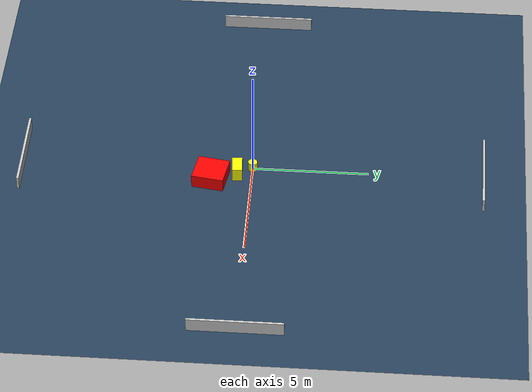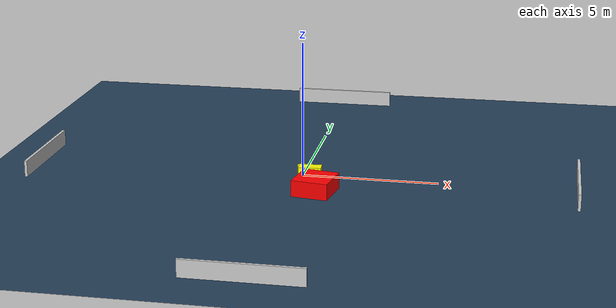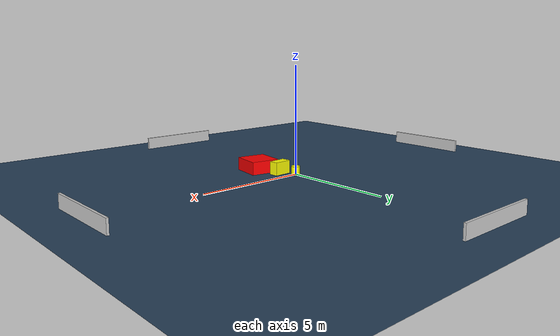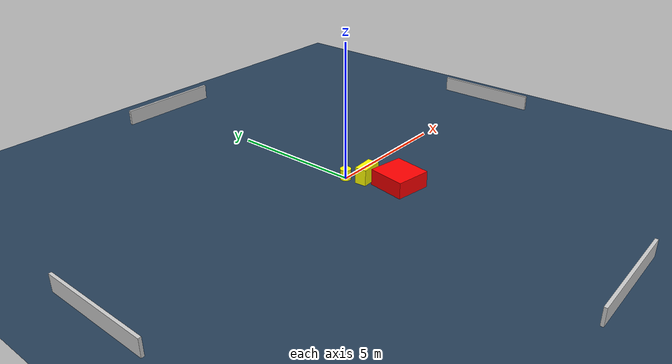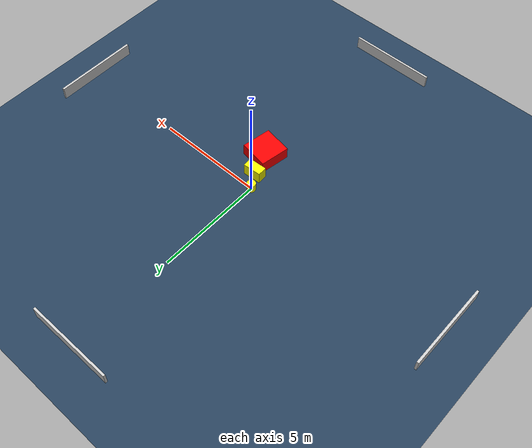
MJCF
<?xml version="1.0" ?>
<mujoco model="generated_environment">
  <option timestep="0.01" integrator="RK4" cone="elliptic"/>
  <default>
    <geom density="1"/>
  </default>
  <asset>
    <texture builtin="gradient" height="3072" name="skybox" rgb1="0.3 0.5 0.7" rgb2="0 0 0" type="skybox" width="512"/>
    <texture builtin="checker" height="300" name="groundplane" rgb1="0.2 0.3 0.4" rgb2="0.1 0.2 0.3" type="2d" width="300"/>
    <material name="groundplane" reflectance="0.2" texrepeat="5 5" texture="groundplane"/>
  </asset>
  <worldbody>
    <light dir="0 0 -1" directional="true" pos="0 0 1.5"/>
    <geom condim="3" friction="0.5 0.005 0.001" material="groundplane" name="floor" pos="0 0 0" size="0 0 0.05" type="plane"/>
    <body name="walls">
      <geom name="wall_1" condim="4" pos="-10.0 0.0 0.3" rgba="0.800000011920929 0.800000011920929 0.800000011920929 1.0" size="0.05 2.0 0.3" type="box"/>
      <geom name="wall_2" condim="4" pos="10.0 0.0 0.3" rgba="0.800000011920929 0.800000011920929 0.800000011920929 1.0" size="0.05 2.0 0.3" type="box"/>
      <geom name="wall_3" condim="4" pos="0.0 -10.0 0.3" rgba="0.800000011920929 0.800000011920929 0.800000011920929 1.0" size="2.0 0.05 0.3" type="box"/>
      <geom name="wall_4" condim="4" pos="0.0 10.0 0.3" rgba="0.800000011920929 0.800000011920929 0.800000011920929 1.0" size="2.0 0.05 0.3" type="box"/>
    </body>
    <body name="robot">
      <joint name="joint_x" type="slide" pos="0 0 0" axis="1 0 0"/>
      <joint name="joint_y" type="slide" pos="0 0 0" axis="0 1 0"/>
      <geom name="robot" type="cylinder" pos="0.0 0.0 0.2" size="0.2 0.2 0.0" mass="5.0" friction="1.0 0.005 0.0001" condim="4" rgba="1.0 1.0 0.0 1.0"/>
    </body>
    <body name="obstacle_1_movable">
      <geom name="obstacle_1_movable" condim="4" pos="0.3932360968591688 -0.6478733897114995 0.3" euler="0 0 3.3286559994052167" friction="0.0 0.005 0.001" rgba="1.0 1.0 0.0 1.0" size="0.4144015324605935 0.21799106507747584 0.3" type="box" mass="0.1"/>
      <joint type="free"/>
    </body>
    <body name="obstacle_2_static">
      <geom name="obstacle_2_static" condim="4" pos="0.7770791271736496 -1.7651643255756366 0.3" euler="0 0 350.577437752125" friction="0.0 0.005 0.001" rgba="1.0 0.0 0.0 1.0" size="0.6655519646504191 0.6936659926326523 0.3" type="box"/>
    </body>
  </worldbody>
  <actuator>
    <motor name="actuator_x" joint="joint_x" gear="1" ctrlrange="-1 1"/>
    <motor name="actuator_y" joint="joint_y" gear="1" ctrlrange="-1 1"/>
  </actuator>
</mujoco>
